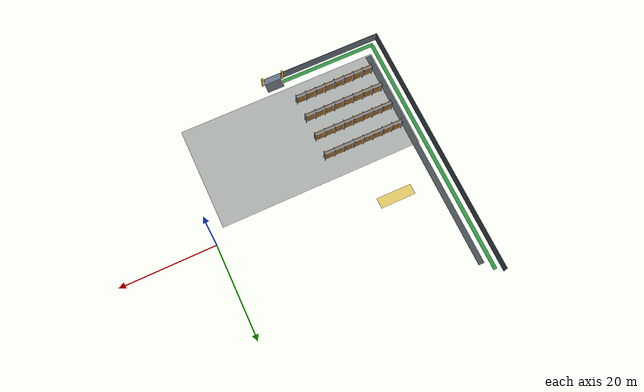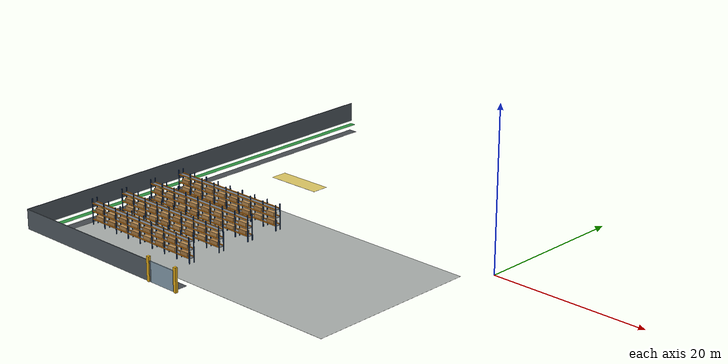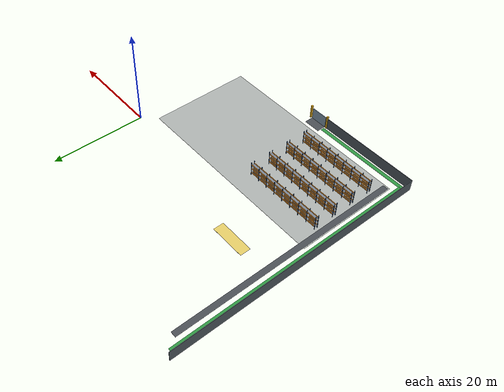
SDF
<sdf version="1.7">
 <world name="warehouse_layout_demo">
  <include><uri>model://sun</uri></include>
  <model name="sw_working_floor">
   <static>true</static>
   <pose>-24.0 -13.8 0.012 0 0 0</pose>
   <link name="marking">
    <visual name="visual">
     <geometry><box><size>43.0 22.0 0.012</size></box></geometry>
     <material><ambient>0.66 0.68 0.67 1</ambient><diffuse>0.66 0.68 0.67 1</diffuse></material>
    </visual>
   </link>
  </model>
  <model name="west_perimeter_path">
   <static>true</static>
   <pose>-44.7 0.0 0.025 0 0 0</pose>
   <link name="marking">
    <visual name="visual">
     <geometry><box><size>1.2 49.0 0.012</size></box></geometry>
     <material><ambient>0.28 0.30 0.32 1</ambient><diffuse>0.28 0.30 0.32 1</diffuse></material>
    </visual>
   </link>
  </model>
  <model name="south_gate_approach">
   <static>true</static>
   <pose>-24.0 -26.525 0.025 0 0 0</pose>
   <link name="marking">
    <visual name="visual">
     <geometry><box><size>3.6 1.95 0.012</size></box></geometry>
     <material><ambient>0.28 0.30 0.32 1</ambient><diffuse>0.28 0.30 0.32 1</diffuse></material>
    </visual>
   </link>
  </model>
  <model name="pedestrian_west">
   <static>true</static>
   <pose>-46.6 0.0 0.055 0 0 0</pose>
   <link name="marking">
    <visual name="visual">
     <geometry><box><size>0.8 53.0 0.012</size></box></geometry>
     <material><ambient>0.18 0.57 0.25 1</ambient><diffuse>0.18 0.57 0.25 1</diffuse></material>
    </visual>
   </link>
  </model>
  <model name="pedestrian_south_west">
   <static>true</static>
   <pose>-36.45 -26.65 0.055 0 0 0</pose>
   <link name="marking">
    <visual name="visual">
     <geometry><box><size>20.9 0.8 0.012</size></box></geometry>
     <material><ambient>0.18 0.57 0.25 1</ambient><diffuse>0.18 0.57 0.25 1</diffuse></material>
    </visual>
   </link>
  </model>
  <model name="south_fence_west">
   <static>true</static>
   <pose>-36.85 -27.5 1.25 0 0 0</pose>
   <link name="link">
    <collision name="collision">
     <geometry><box><size>22.1 0.09 2.5</size></box></geometry>
     <surface><friction><ode><mu>0.9</mu><mu2>0.9</mu2></ode></friction></surface>
    </collision>
    <visual name="visual">
     <geometry><box><size>22.1 0.09 2.5</size></box></geometry>
     <material><ambient>0.33 0.37 0.40 1</ambient><diffuse>0.33 0.37 0.40 1</diffuse></material>
    </visual>
   </link>
  </model>
  <model name="west_fence">
   <static>true</static>
   <pose>-47.9 0.0 1.25 0 0 0</pose>
   <link name="link">
    <collision name="collision">
     <geometry><box><size>0.09 55.0 2.5</size></box></geometry>
     <surface><friction><ode><mu>0.9</mu><mu2>0.9</mu2></ode></friction></surface>
    </collision>
    <visual name="visual">
     <geometry><box><size>0.09 55.0 2.5</size></box></geometry>
     <material><ambient>0.33 0.37 0.40 1</ambient><diffuse>0.33 0.37 0.40 1</diffuse></material>
    </visual>
   </link>
  </model>
  <model name="south_gate_west_post">
   <static>true</static>
   <pose>-26.2 -27.5 1.5 0 0 0</pose>
   <link name="link">
    <collision name="collision">
     <geometry><box><size>0.35 0.35 3.0</size></box></geometry>
     <surface><friction><ode><mu>0.9</mu><mu2>0.9</mu2></ode></friction></surface>
    </collision>
    <visual name="visual">
     <geometry><box><size>0.35 0.35 3.0</size></box></geometry>
     <material><ambient>0.95 0.72 0.10 1</ambient><diffuse>0.95 0.72 0.10 1</diffuse></material>
    </visual>
   </link>
  </model>
  <model name="south_gate_east_post">
   <static>true</static>
   <pose>-21.8 -27.5 1.5 0 0 0</pose>
   <link name="link">
    <collision name="collision">
     <geometry><box><size>0.35 0.35 3.0</size></box></geometry>
     <surface><friction><ode><mu>0.9</mu><mu2>0.9</mu2></ode></friction></surface>
    </collision>
    <visual name="visual">
     <geometry><box><size>0.35 0.35 3.0</size></box></geometry>
     <material><ambient>0.95 0.72 0.10 1</ambient><diffuse>0.95 0.72 0.10 1</diffuse></material>
    </visual>
   </link>
  </model>
  <model name="warehouse_south_gate">
   <static>false</static>
   <pose>-24.0 -27.5 1.25 0 0 0</pose>
   <link name="panel">
    <kinematic>true</kinematic>
    <gravity>false</gravity>
    <inertial>
     <mass>100.0</mass>
     <inertia><ixx>100.0</ixx><iyy>100.0</iyy><izz>100.0</izz><ixy>0</ixy><ixz>0</ixz><iyz>0</iyz></inertia>
    </inertial>
    <collision name="collision"><geometry><box><size>3.6 0.105 2.5</size></box></geometry></collision>
    <visual name="visual">
     <geometry><box><size>3.6 0.105 2.5</size></box></geometry>
     <material><ambient>0.55 0.65 0.72 1</ambient><diffuse>0.55 0.65 0.72 1</diffuse></material>
    </visual>
   </link>
  </model>
  <model name="storage_rack_west_1_sw">
   <static>true</static>
   <pose>-35.0 -7.5 0 0 0 0</pose>
   <link name="rack">
    <collision name="rack_footprint">
     <pose>0 0 1.65 0 0 0</pose>
     <geometry><box><size>17.0 0.7 3.3</size></box></geometry>
    </collision>
    <visual name="upright_0_0">
     <pose>-8.5 -0.35 1.65 0 0 0</pose>
     <geometry><box><size>0.10 0.10 3.3</size></box></geometry>
     <material><ambient>0.12 0.24 0.42 1</ambient><diffuse>0.12 0.24 0.42 1</diffuse></material>
    </visual>
    <visual name="upright_0_1">
     <pose>-8.5 0.35 1.65 0 0 0</pose>
     <geometry><box><size>0.10 0.10 3.3</size></box></geometry>
     <material><ambient>0.12 0.24 0.42 1</ambient><diffuse>0.12 0.24 0.42 1</diffuse></material>
    </visual>
    <visual name="upright_1_0">
     <pose>-6.375 -0.35 1.65 0 0 0</pose>
     <geometry><box><size>0.10 0.10 3.3</size></box></geometry>
     <material><ambient>0.12 0.24 0.42 1</ambient><diffuse>0.12 0.24 0.42 1</diffuse></material>
    </visual>
    <visual name="upright_1_1">
     <pose>-6.375 0.35 1.65 0 0 0</pose>
     <geometry><box><size>0.10 0.10 3.3</size></box></geometry>
     <material><ambient>0.12 0.24 0.42 1</ambient><diffuse>0.12 0.24 0.42 1</diffuse></material>
    </visual>
    <visual name="upright_2_0">
     <pose>-4.25 -0.35 1.65 0 0 0</pose>
     <geometry><box><size>0.10 0.10 3.3</size></box></geometry>
     <material><ambient>0.12 0.24 0.42 1</ambient><diffuse>0.12 0.24 0.42 1</diffuse></material>
    </visual>
    <visual name="upright_2_1">
     <pose>-4.25 0.35 1.65 0 0 0</pose>
     <geometry><box><size>0.10 0.10 3.3</size></box></geometry>
     <material><ambient>0.12 0.24 0.42 1</ambient><diffuse>0.12 0.24 0.42 1</diffuse></material>
    </visual>
    <visual name="upright_3_0">
     <pose>-2.125 -0.35 1.65 0 0 0</pose>
     <geometry><box><size>0.10 0.10 3.3</size></box></geometry>
     <material><ambient>0.12 0.24 0.42 1</ambient><diffuse>0.12 0.24 0.42 1</diffuse></material>
    </visual>
    <visual name="upright_3_1">
     <pose>-2.125 0.35 1.65 0 0 0</pose>
     <geometry><box><size>0.10 0.10 3.3</size></box></geometry>
     <material><ambient>0.12 0.24 0.42 1</ambient><diffuse>0.12 0.24 0.42 1</diffuse></material>
    </visual>
    <visual name="upright_4_0">
     <pose>0.0 -0.35 1.65 0 0 0</pose>
     <geometry><box><size>0.10 0.10 3.3</size></box></geometry>
     <material><ambient>0.12 0.24 0.42 1</ambient><diffuse>0.12 0.24 0.42 1</diffuse></material>
    </visual>
    <visual name="upright_4_1">
     <pose>0.0 0.35 1.65 0 0 0</pose>
     <geometry><box><size>0.10 0.10 3.3</size></box></geometry>
     <material><ambient>0.12 0.24 0.42 1</ambient><diffuse>0.12 0.24 0.42 1</diffuse></material>
    </visual>
    <visual name="upright_5_0">
     <pose>2.125 -0.35 1.65 0 0 0</pose>
     <geometry><box><size>0.10 0.10 3.3</size></box></geometry>
     <material><ambient>0.12 0.24 0.42 1</ambient><diffuse>0.12 0.24 0.42 1</diffuse></material>
    </visual>
    <visual name="upright_5_1">
     <pose>2.125 0.35 1.65 0 0 0</pose>
     <geometry><box><size>0.10 0.10 3.3</size></box></geometry>
     <material><ambient>0.12 0.24 0.42 1</ambient><diffuse>0.12 0.24 0.42 1</diffuse></material>
    </visual>
    <visual name="upright_6_0">
     <pose>4.25 -0.35 1.65 0 0 0</pose>
     <geometry><box><size>0.10 0.10 3.3</size></box></geometry>
     <material><ambient>0.12 0.24 0.42 1</ambient><diffuse>0.12 0.24 0.42 1</diffuse></material>
    </visual>
    <visual name="upright_6_1">
     <pose>4.25 0.35 1.65 0 0 0</pose>
     <geometry><box><size>0.10 0.10 3.3</size></box></geometry>
     <material><ambient>0.12 0.24 0.42 1</ambient><diffuse>0.12 0.24 0.42 1</diffuse></material>
    </visual>
    <visual name="upright_7_0">
     <pose>6.375 -0.35 1.65 0 0 0</pose>
     <geometry><box><size>0.10 0.10 3.3</size></box></geometry>
     <material><ambient>0.12 0.24 0.42 1</ambient><diffuse>0.12 0.24 0.42 1</diffuse></material>
    </visual>
    <visual name="upright_7_1">
     <pose>6.375 0.35 1.65 0 0 0</pose>
     <geometry><box><size>0.10 0.10 3.3</size></box></geometry>
     <material><ambient>0.12 0.24 0.42 1</ambient><diffuse>0.12 0.24 0.42 1</diffuse></material>
    </visual>
    <visual name="upright_8_0">
     <pose>8.5 -0.35 1.65 0 0 0</pose>
     <geometry><box><size>0.10 0.10 3.3</size></box></geometry>
     <material><ambient>0.12 0.24 0.42 1</ambient><diffuse>0.12 0.24 0.42 1</diffuse></material>
    </visual>
    <visual name="upright_8_1">
     <pose>8.5 0.35 1.65 0 0 0</pose>
     <geometry><box><size>0.10 0.10 3.3</size></box></geometry>
     <material><ambient>0.12 0.24 0.42 1</ambient><diffuse>0.12 0.24 0.42 1</diffuse></material>
    </visual>
    <visual name="deck_0">
     <pose>0 0 0.65 0 0 0</pose>
     <geometry><box><size>17.0 0.7 0.06</size></box></geometry>
     <material><ambient>0.48 0.51 0.55 1</ambient><diffuse>0.48 0.51 0.55 1</diffuse></material>
    </visual>
    <visual name="beam_0_0">
     <pose>0 -0.35 0.71 0 0 0</pose>
     <geometry><box><size>17.0 0.10 0.12</size></box></geometry>
     <material><ambient>0.95 0.55 0.08 1</ambient><diffuse>0.95 0.55 0.08 1</diffuse></material>
    </visual>
    <visual name="beam_0_1">
     <pose>0 0.35 0.71 0 0 0</pose>
     <geometry><box><size>17.0 0.10 0.12</size></box></geometry>
     <material><ambient>0.95 0.55 0.08 1</ambient><diffuse>0.95 0.55 0.08 1</diffuse></material>
    </visual>
    <visual name="deck_1">
     <pose>0 0 1.65 0 0 0</pose>
     <geometry><box><size>17.0 0.7 0.06</size></box></geometry>
     <material><ambient>0.48 0.51 0.55 1</ambient><diffuse>0.48 0.51 0.55 1</diffuse></material>
    </visual>
    <visual name="beam_1_0">
     <pose>0 -0.35 1.71 0 0 0</pose>
     <geometry><box><size>17.0 0.10 0.12</size></box></geometry>
     <material><ambient>0.95 0.55 0.08 1</ambient><diffuse>0.95 0.55 0.08 1</diffuse></material>
    </visual>
    <visual name="beam_1_1">
     <pose>0 0.35 1.71 0 0 0</pose>
     <geometry><box><size>17.0 0.10 0.12</size></box></geometry>
     <material><ambient>0.95 0.55 0.08 1</ambient><diffuse>0.95 0.55 0.08 1</diffuse></material>
    </visual>
    <visual name="deck_2">
     <pose>0 0 2.65 0 0 0</pose>
     <geometry><box><size>17.0 0.7 0.06</size></box></geometry>
     <material><ambient>0.48 0.51 0.55 1</ambient><diffuse>0.48 0.51 0.55 1</diffuse></material>
    </visual>
    <visual name="beam_2_0">
     <pose>0 -0.35 2.71 0 0 0</pose>
     <geometry><box><size>17.0 0.10 0.12</size></box></geometry>
     <material><ambient>0.95 0.55 0.08 1</ambient><diffuse>0.95 0.55 0.08 1</diffuse></material>
    </visual>
    <visual name="beam_2_1">
     <pose>0 0.35 2.71 0 0 0</pose>
     <geometry><box><size>17.0 0.10 0.12</size></box></geometry>
     <material><ambient>0.95 0.55 0.08 1</ambient><diffuse>0.95 0.55 0.08 1</diffuse></material>
    </visual>
    <visual name="load_0_0">
     <pose>-7.4375 0 0.95 0 0 0</pose>
     <geometry><box><size>1.25 0.504 0.48</size></box></geometry>
     <material><ambient>0.72 0.54 0.31 1</ambient><diffuse>0.72 0.54 0.31 1</diffuse></material>
    </visual>
    <visual name="load_0_1">
     <pose>-7.4375 0 1.95 0 0 0</pose>
     <geometry><box><size>1.25 0.504 0.48</size></box></geometry>
     <material><ambient>0.67 0.48 0.25 1</ambient><diffuse>0.67 0.48 0.25 1</diffuse></material>
    </visual>
    <visual name="load_1_0">
     <pose>-5.3125 0 0.95 0 0 0</pose>
     <geometry><box><size>1.25 0.504 0.48</size></box></geometry>
     <material><ambient>0.67 0.48 0.25 1</ambient><diffuse>0.67 0.48 0.25 1</diffuse></material>
    </visual>
    <visual name="load_1_1">
     <pose>-5.3125 0 1.95 0 0 0</pose>
     <geometry><box><size>1.25 0.504 0.48</size></box></geometry>
     <material><ambient>0.72 0.54 0.31 1</ambient><diffuse>0.72 0.54 0.31 1</diffuse></material>
    </visual>
    <visual name="load_2_0">
     <pose>-3.1875 0 0.95 0 0 0</pose>
     <geometry><box><size>1.25 0.504 0.48</size></box></geometry>
     <material><ambient>0.72 0.54 0.31 1</ambient><diffuse>0.72 0.54 0.31 1</diffuse></material>
    </visual>
    <visual name="load_2_1">
     <pose>-3.1875 0 1.95 0 0 0</pose>
     <geometry><box><size>1.25 0.504 0.48</size></box></geometry>
     <material><ambient>0.67 0.48 0.25 1</ambient><diffuse>0.67 0.48 0.25 1</diffuse></material>
    </visual>
    <visual name="load_3_0">
     <pose>-1.0625 0 0.95 0 0 0</pose>
     <geometry><box><size>1.25 0.504 0.48</size></box></geometry>
     <material><ambient>0.67 0.48 0.25 1</ambient><diffuse>0.67 0.48 0.25 1</diffuse></material>
    </visual>
    <visual name="load_3_1">
     <pose>-1.0625 0 1.95 0 0 0</pose>
     <geometry><box><size>1.25 0.504 0.48</size></box></geometry>
     <material><ambient>0.72 0.54 0.31 1</ambient><diffuse>0.72 0.54 0.31 1</diffuse></material>
    </visual>
    <visual name="load_4_0">
     <pose>1.0625 0 0.95 0 0 0</pose>
     <geometry><box><size>1.25 0.504 0.48</size></box></geometry>
     <material><ambient>0.72 0.54 0.31 1</ambient><diffuse>0.72 0.54 0.31 1</diffuse></material>
    </visual>
    <visual name="load_4_1">
     <pose>1.0625 0 1.95 0 0 0</pose>
     <geometry><box><size>1.25 0.504 0.48</size></box></geometry>
     <material><ambient>0.67 0.48 0.25 1</ambient><diffuse>0.67 0.48 0.25 1</diffuse></material>
    </visual>
    <visual name="load_5_0">
     <pose>3.1875 0 0.95 0 0 0</pose>
     <geometry><box><size>1.25 0.504 0.48</size></box></geometry>
     <material><ambient>0.67 0.48 0.25 1</ambient><diffuse>0.67 0.48 0.25 1</diffuse></material>
    </visual>
    <visual name="load_5_1">
     <pose>3.1875 0 1.95 0 0 0</pose>
     <geometry><box><size>1.25 0.504 0.48</size></box></geometry>
     <material><ambient>0.72 0.54 0.31 1</ambient><diffuse>0.72 0.54 0.31 1</diffuse></material>
    </visual>
    <visual name="load_6_0">
     <pose>5.3125 0 0.95 0 0 0</pose>
     <geometry><box><size>1.25 0.504 0.48</size></box></geometry>
     <material><ambient>0.72 0.54 0.31 1</ambient><diffuse>0.72 0.54 0.31 1</diffuse></material>
    </visual>
    <visual name="load_6_1">
     <pose>5.3125 0 1.95 0 0 0</pose>
     <geometry><box><size>1.25 0.504 0.48</size></box></geometry>
     <material><ambient>0.67 0.48 0.25 1</ambient><diffuse>0.67 0.48 0.25 1</diffuse></material>
    </visual>
    <visual name="load_7_0">
     <pose>7.4375 0 0.95 0 0 0</pose>
     <geometry><box><size>1.25 0.504 0.48</size></box></geometry>
     <material><ambient>0.67 0.48 0.25 1</ambient><diffuse>0.67 0.48 0.25 1</diffuse></material>
    </visual>
    <visual name="load_7_1">
     <pose>7.4375 0 1.95 0 0 0</pose>
     <geometry><box><size>1.25 0.504 0.48</size></box></geometry>
     <material><ambient>0.72 0.54 0.31 1</ambient><diffuse>0.72 0.54 0.31 1</diffuse></material>
    </visual>
   </link>
  </model>
  <model name="storage_rack_west_2_sw">
   <static>true</static>
   <pose>-35.0 -12.0 0 0 0 0</pose>
   <link name="rack">
    <collision name="rack_footprint">
     <pose>0 0 1.65 0 0 0</pose>
     <geometry><box><size>17.0 0.7 3.3</size></box></geometry>
    </collision>
    <visual name="upright_0_0">
     <pose>-8.5 -0.35 1.65 0 0 0</pose>
     <geometry><box><size>0.10 0.10 3.3</size></box></geometry>
     <material><ambient>0.12 0.24 0.42 1</ambient><diffuse>0.12 0.24 0.42 1</diffuse></material>
    </visual>
    <visual name="upright_0_1">
     <pose>-8.5 0.35 1.65 0 0 0</pose>
     <geometry><box><size>0.10 0.10 3.3</size></box></geometry>
     <material><ambient>0.12 0.24 0.42 1</ambient><diffuse>0.12 0.24 0.42 1</diffuse></material>
    </visual>
    <visual name="upright_1_0">
     <pose>-6.375 -0.35 1.65 0 0 0</pose>
     <geometry><box><size>0.10 0.10 3.3</size></box></geometry>
     <material><ambient>0.12 0.24 0.42 1</ambient><diffuse>0.12 0.24 0.42 1</diffuse></material>
    </visual>
    <visual name="upright_1_1">
     <pose>-6.375 0.35 1.65 0 0 0</pose>
     <geometry><box><size>0.10 0.10 3.3</size></box></geometry>
     <material><ambient>0.12 0.24 0.42 1</ambient><diffuse>0.12 0.24 0.42 1</diffuse></material>
    </visual>
    <visual name="upright_2_0">
     <pose>-4.25 -0.35 1.65 0 0 0</pose>
     <geometry><box><size>0.10 0.10 3.3</size></box></geometry>
     <material><ambient>0.12 0.24 0.42 1</ambient><diffuse>0.12 0.24 0.42 1</diffuse></material>
    </visual>
    <visual name="upright_2_1">
     <pose>-4.25 0.35 1.65 0 0 0</pose>
     <geometry><box><size>0.10 0.10 3.3</size></box></geometry>
     <material><ambient>0.12 0.24 0.42 1</ambient><diffuse>0.12 0.24 0.42 1</diffuse></material>
    </visual>
    <visual name="upright_3_0">
     <pose>-2.125 -0.35 1.65 0 0 0</pose>
     <geometry><box><size>0.10 0.10 3.3</size></box></geometry>
     <material><ambient>0.12 0.24 0.42 1</ambient><diffuse>0.12 0.24 0.42 1</diffuse></material>
    </visual>
    <visual name="upright_3_1">
     <pose>-2.125 0.35 1.65 0 0 0</pose>
     <geometry><box><size>0.10 0.10 3.3</size></box></geometry>
     <material><ambient>0.12 0.24 0.42 1</ambient><diffuse>0.12 0.24 0.42 1</diffuse></material>
    </visual>
    <visual name="upright_4_0">
     <pose>0.0 -0.35 1.65 0 0 0</pose>
     <geometry><box><size>0.10 0.10 3.3</size></box></geometry>
     <material><ambient>0.12 0.24 0.42 1</ambient><diffuse>0.12 0.24 0.42 1</diffuse></material>
    </visual>
    <visual name="upright_4_1">
     <pose>0.0 0.35 1.65 0 0 0</pose>
     <geometry><box><size>0.10 0.10 3.3</size></box></geometry>
     <material><ambient>0.12 0.24 0.42 1</ambient><diffuse>0.12 0.24 0.42 1</diffuse></material>
    </visual>
    <visual name="upright_5_0">
     <pose>2.125 -0.35 1.65 0 0 0</pose>
     <geometry><box><size>0.10 0.10 3.3</size></box></geometry>
     <material><ambient>0.12 0.24 0.42 1</ambient><diffuse>0.12 0.24 0.42 1</diffuse></material>
    </visual>
    <visual name="upright_5_1">
     <pose>2.125 0.35 1.65 0 0 0</pose>
     <geometry><box><size>0.10 0.10 3.3</size></box></geometry>
     <material><ambient>0.12 0.24 0.42 1</ambient><diffuse>0.12 0.24 0.42 1</diffuse></material>
    </visual>
    <visual name="upright_6_0">
     <pose>4.25 -0.35 1.65 0 0 0</pose>
     <geometry><box><size>0.10 0.10 3.3</size></box></geometry>
     <material><ambient>0.12 0.24 0.42 1</ambient><diffuse>0.12 0.24 0.42 1</diffuse></material>
    </visual>
    <visual name="upright_6_1">
     <pose>4.25 0.35 1.65 0 0 0</pose>
     <geometry><box><size>0.10 0.10 3.3</size></box></geometry>
     <material><ambient>0.12 0.24 0.42 1</ambient><diffuse>0.12 0.24 0.42 1</diffuse></material>
    </visual>
    <visual name="upright_7_0">
     <pose>6.375 -0.35 1.65 0 0 0</pose>
     <geometry><box><size>0.10 0.10 3.3</size></box></geometry>
     <material><ambient>0.12 0.24 0.42 1</ambient><diffuse>0.12 0.24 0.42 1</diffuse></material>
    </visual>
    <visual name="upright_7_1">
     <pose>6.375 0.35 1.65 0 0 0</pose>
     <geometry><box><size>0.10 0.10 3.3</size></box></geometry>
     <material><ambient>0.12 0.24 0.42 1</ambient><diffuse>0.12 0.24 0.42 1</diffuse></material>
    </visual>
    <visual name="upright_8_0">
     <pose>8.5 -0.35 1.65 0 0 0</pose>
     <geometry><box><size>0.10 0.10 3.3</size></box></geometry>
     <material><ambient>0.12 0.24 0.42 1</ambient><diffuse>0.12 0.24 0.42 1</diffuse></material>
    </visual>
    <visual name="upright_8_1">
     <pose>8.5 0.35 1.65 0 0 0</pose>
     <geometry><box><size>0.10 0.10 3.3</size></box></geometry>
     <material><ambient>0.12 0.24 0.42 1</ambient><diffuse>0.12 0.24 0.42 1</diffuse></material>
    </visual>
    <visual name="deck_0">
     <pose>0 0 0.65 0 0 0</pose>
     <geometry><box><size>17.0 0.7 0.06</size></box></geometry>
     <material><ambient>0.48 0.51 0.55 1</ambient><diffuse>0.48 0.51 0.55 1</diffuse></material>
    </visual>
    <visual name="beam_0_0">
     <pose>0 -0.35 0.71 0 0 0</pose>
     <geometry><box><size>17.0 0.10 0.12</size></box></geometry>
     <material><ambient>0.95 0.55 0.08 1</ambient><diffuse>0.95 0.55 0.08 1</diffuse></material>
    </visual>
    <visual name="beam_0_1">
     <pose>0 0.35 0.71 0 0 0</pose>
     <geometry><box><size>17.0 0.10 0.12</size></box></geometry>
     <material><ambient>0.95 0.55 0.08 1</ambient><diffuse>0.95 0.55 0.08 1</diffuse></material>
    </visual>
    <visual name="deck_1">
     <pose>0 0 1.65 0 0 0</pose>
     <geometry><box><size>17.0 0.7 0.06</size></box></geometry>
     <material><ambient>0.48 0.51 0.55 1</ambient><diffuse>0.48 0.51 0.55 1</diffuse></material>
    </visual>
    <visual name="beam_1_0">
     <pose>0 -0.35 1.71 0 0 0</pose>
     <geometry><box><size>17.0 0.10 0.12</size></box></geometry>
     <material><ambient>0.95 0.55 0.08 1</ambient><diffuse>0.95 0.55 0.08 1</diffuse></material>
    </visual>
    <visual name="beam_1_1">
     <pose>0 0.35 1.71 0 0 0</pose>
     <geometry><box><size>17.0 0.10 0.12</size></box></geometry>
     <material><ambient>0.95 0.55 0.08 1</ambient><diffuse>0.95 0.55 0.08 1</diffuse></material>
    </visual>
    <visual name="deck_2">
     <pose>0 0 2.65 0 0 0</pose>
     <geometry><box><size>17.0 0.7 0.06</size></box></geometry>
     <material><ambient>0.48 0.51 0.55 1</ambient><diffuse>0.48 0.51 0.55 1</diffuse></material>
    </visual>
    <visual name="beam_2_0">
     <pose>0 -0.35 2.71 0 0 0</pose>
     <geometry><box><size>17.0 0.10 0.12</size></box></geometry>
     <material><ambient>0.95 0.55 0.08 1</ambient><diffuse>0.95 0.55 0.08 1</diffuse></material>
    </visual>
    <visual name="beam_2_1">
     <pose>0 0.35 2.71 0 0 0</pose>
     <geometry><box><size>17.0 0.10 0.12</size></box></geometry>
     <material><ambient>0.95 0.55 0.08 1</ambient><diffuse>0.95 0.55 0.08 1</diffuse></material>
    </visual>
    <visual name="load_0_0">
     <pose>-7.4375 0 0.95 0 0 0</pose>
     <geometry><box><size>1.25 0.504 0.48</size></box></geometry>
     <material><ambient>0.72 0.54 0.31 1</ambient><diffuse>0.72 0.54 0.31 1</diffuse></material>
    </visual>
    <visual name="load_0_1">
     <pose>-7.4375 0 1.95 0 0 0</pose>
     <geometry><box><size>1.25 0.504 0.48</size></box></geometry>
     <material><ambient>0.67 0.48 0.25 1</ambient><diffuse>0.67 0.48 0.25 1</diffuse></material>
    </visual>
    <visual name="load_1_0">
     <pose>-5.3125 0 0.95 0 0 0</pose>
     <geometry><box><size>1.25 0.504 0.48</size></box></geometry>
     <material><ambient>0.67 0.48 0.25 1</ambient><diffuse>0.67 0.48 0.25 1</diffuse></material>
    </visual>
    <visual name="load_1_1">
     <pose>-5.3125 0 1.95 0 0 0</pose>
     <geometry><box><size>1.25 0.504 0.48</size></box></geometry>
     <material><ambient>0.72 0.54 0.31 1</ambient><diffuse>0.72 0.54 0.31 1</diffuse></material>
    </visual>
    <visual name="load_2_0">
     <pose>-3.1875 0 0.95 0 0 0</pose>
     <geometry><box><size>1.25 0.504 0.48</size></box></geometry>
     <material><ambient>0.72 0.54 0.31 1</ambient><diffuse>0.72 0.54 0.31 1</diffuse></material>
    </visual>
    <visual name="load_2_1">
     <pose>-3.1875 0 1.95 0 0 0</pose>
     <geometry><box><size>1.25 0.504 0.48</size></box></geometry>
     <material><ambient>0.67 0.48 0.25 1</ambient><diffuse>0.67 0.48 0.25 1</diffuse></material>
    </visual>
    <visual name="load_3_0">
     <pose>-1.0625 0 0.95 0 0 0</pose>
     <geometry><box><size>1.25 0.504 0.48</size></box></geometry>
     <material><ambient>0.67 0.48 0.25 1</ambient><diffuse>0.67 0.48 0.25 1</diffuse></material>
    </visual>
    <visual name="load_3_1">
     <pose>-1.0625 0 1.95 0 0 0</pose>
     <geometry><box><size>1.25 0.504 0.48</size></box></geometry>
     <material><ambient>0.72 0.54 0.31 1</ambient><diffuse>0.72 0.54 0.31 1</diffuse></material>
    </visual>
    <visual name="load_4_0">
     <pose>1.0625 0 0.95 0 0 0</pose>
     <geometry><box><size>1.25 0.504 0.48</size></box></geometry>
     <material><ambient>0.72 0.54 0.31 1</ambient><diffuse>0.72 0.54 0.31 1</diffuse></material>
    </visual>
    <visual name="load_4_1">
     <pose>1.0625 0 1.95 0 0 0</pose>
     <geometry><box><size>1.25 0.504 0.48</size></box></geometry>
     <material><ambient>0.67 0.48 0.25 1</ambient><diffuse>0.67 0.48 0.25 1</diffuse></material>
    </visual>
    <visual name="load_5_0">
     <pose>3.1875 0 0.95 0 0 0</pose>
     <geometry><box><size>1.25 0.504 0.48</size></box></geometry>
     <material><ambient>0.67 0.48 0.25 1</ambient><diffuse>0.67 0.48 0.25 1</diffuse></material>
    </visual>
    <visual name="load_5_1">
     <pose>3.1875 0 1.95 0 0 0</pose>
     <geometry><box><size>1.25 0.504 0.48</size></box></geometry>
     <material><ambient>0.72 0.54 0.31 1</ambient><diffuse>0.72 0.54 0.31 1</diffuse></material>
    </visual>
    <visual name="load_6_0">
     <pose>5.3125 0 0.95 0 0 0</pose>
     <geometry><box><size>1.25 0.504 0.48</size></box></geometry>
     <material><ambient>0.72 0.54 0.31 1</ambient><diffuse>0.72 0.54 0.31 1</diffuse></material>
    </visual>
    <visual name="load_6_1">
     <pose>5.3125 0 1.95 0 0 0</pose>
     <geometry><box><size>1.25 0.504 0.48</size></box></geometry>
     <material><ambient>0.67 0.48 0.25 1</ambient><diffuse>0.67 0.48 0.25 1</diffuse></material>
    </visual>
    <visual name="load_7_0">
     <pose>7.4375 0 0.95 0 0 0</pose>
     <geometry><box><size>1.25 0.504 0.48</size></box></geometry>
     <material><ambient>0.67 0.48 0.25 1</ambient><diffuse>0.67 0.48 0.25 1</diffuse></material>
    </visual>
    <visual name="load_7_1">
     <pose>7.4375 0 1.95 0 0 0</pose>
     <geometry><box><size>1.25 0.504 0.48</size></box></geometry>
     <material><ambient>0.72 0.54 0.31 1</ambient><diffuse>0.72 0.54 0.31 1</diffuse></material>
    </visual>
   </link>
  </model>
  <model name="storage_rack_west_3_sw">
   <static>true</static>
   <pose>-35.0 -16.5 0 0 0 0</pose>
   <link name="rack">
    <collision name="rack_footprint">
     <pose>0 0 1.65 0 0 0</pose>
     <geometry><box><size>17.0 0.7 3.3</size></box></geometry>
    </collision>
    <visual name="upright_0_0">
     <pose>-8.5 -0.35 1.65 0 0 0</pose>
     <geometry><box><size>0.10 0.10 3.3</size></box></geometry>
     <material><ambient>0.12 0.24 0.42 1</ambient><diffuse>0.12 0.24 0.42 1</diffuse></material>
    </visual>
    <visual name="upright_0_1">
     <pose>-8.5 0.35 1.65 0 0 0</pose>
     <geometry><box><size>0.10 0.10 3.3</size></box></geometry>
     <material><ambient>0.12 0.24 0.42 1</ambient><diffuse>0.12 0.24 0.42 1</diffuse></material>
    </visual>
    <visual name="upright_1_0">
     <pose>-6.375 -0.35 1.65 0 0 0</pose>
     <geometry><box><size>0.10 0.10 3.3</size></box></geometry>
     <material><ambient>0.12 0.24 0.42 1</ambient><diffuse>0.12 0.24 0.42 1</diffuse></material>
    </visual>
    <visual name="upright_1_1">
     <pose>-6.375 0.35 1.65 0 0 0</pose>
     <geometry><box><size>0.10 0.10 3.3</size></box></geometry>
     <material><ambient>0.12 0.24 0.42 1</ambient><diffuse>0.12 0.24 0.42 1</diffuse></material>
    </visual>
    <visual name="upright_2_0">
     <pose>-4.25 -0.35 1.65 0 0 0</pose>
     <geometry><box><size>0.10 0.10 3.3</size></box></geometry>
     <material><ambient>0.12 0.24 0.42 1</ambient><diffuse>0.12 0.24 0.42 1</diffuse></material>
    </visual>
    <visual name="upright_2_1">
     <pose>-4.25 0.35 1.65 0 0 0</pose>
     <geometry><box><size>0.10 0.10 3.3</size></box></geometry>
     <material><ambient>0.12 0.24 0.42 1</ambient><diffuse>0.12 0.24 0.42 1</diffuse></material>
    </visual>
    <visual name="upright_3_0">
     <pose>-2.125 -0.35 1.65 0 0 0</pose>
     <geometry><box><size>0.10 0.10 3.3</size></box></geometry>
     <material><ambient>0.12 0.24 0.42 1</ambient><diffuse>0.12 0.24 0.42 1</diffuse></material>
    </visual>
    <visual name="upright_3_1">
     <pose>-2.125 0.35 1.65 0 0 0</pose>
     <geometry><box><size>0.10 0.10 3.3</size></box></geometry>
     <material><ambient>0.12 0.24 0.42 1</ambient><diffuse>0.12 0.24 0.42 1</diffuse></material>
    </visual>
    <visual name="upright_4_0">
     <pose>0.0 -0.35 1.65 0 0 0</pose>
     <geometry><box><size>0.10 0.10 3.3</size></box></geometry>
     <material><ambient>0.12 0.24 0.42 1</ambient><diffuse>0.12 0.24 0.42 1</diffuse></material>
    </visual>
    <visual name="upright_4_1">
     <pose>0.0 0.35 1.65 0 0 0</pose>
     <geometry><box><size>0.10 0.10 3.3</size></box></geometry>
     <material><ambient>0.12 0.24 0.42 1</ambient><diffuse>0.12 0.24 0.42 1</diffuse></material>
    </visual>
    <visual name="upright_5_0">
     <pose>2.125 -0.35 1.65 0 0 0</pose>
     <geometry><box><size>0.10 0.10 3.3</size></box></geometry>
     <material><ambient>0.12 0.24 0.42 1</ambient><diffuse>0.12 0.24 0.42 1</diffuse></material>
    </visual>
    <visual name="upright_5_1">
     <pose>2.125 0.35 1.65 0 0 0</pose>
     <geometry><box><size>0.10 0.10 3.3</size></box></geometry>
     <material><ambient>0.12 0.24 0.42 1</ambient><diffuse>0.12 0.24 0.42 1</diffuse></material>
    </visual>
    <visual name="upright_6_0">
     <pose>4.25 -0.35 1.65 0 0 0</pose>
     <geometry><box><size>0.10 0.10 3.3</size></box></geometry>
     <material><ambient>0.12 0.24 0.42 1</ambient><diffuse>0.12 0.24 0.42 1</diffuse></material>
    </visual>
    <visual name="upright_6_1">
     <pose>4.25 0.35 1.65 0 0 0</pose>
     <geometry><box><size>0.10 0.10 3.3</size></box></geometry>
     <material><ambient>0.12 0.24 0.42 1</ambient><diffuse>0.12 0.24 0.42 1</diffuse></material>
    </visual>
    <visual name="upright_7_0">
     <pose>6.375 -0.35 1.65 0 0 0</pose>
     <geometry><box><size>0.10 0.10 3.3</size></box></geometry>
     <material><ambient>0.12 0.24 0.42 1</ambient><diffuse>0.12 0.24 0.42 1</diffuse></material>
    </visual>
    <visual name="upright_7_1">
     <pose>6.375 0.35 1.65 0 0 0</pose>
     <geometry><box><size>0.10 0.10 3.3</size></box></geometry>
     <material><ambient>0.12 0.24 0.42 1</ambient><diffuse>0.12 0.24 0.42 1</diffuse></material>
    </visual>
    <visual name="upright_8_0">
     <pose>8.5 -0.35 1.65 0 0 0</pose>
     <geometry><box><size>0.10 0.10 3.3</size></box></geometry>
     <material><ambient>0.12 0.24 0.42 1</ambient><diffuse>0.12 0.24 0.42 1</diffuse></material>
    </visual>
    <visual name="upright_8_1">
     <pose>8.5 0.35 1.65 0 0 0</pose>
     <geometry><box><size>0.10 0.10 3.3</size></box></geometry>
     <material><ambient>0.12 0.24 0.42 1</ambient><diffuse>0.12 0.24 0.42 1</diffuse></material>
    </visual>
    <visual name="deck_0">
     <pose>0 0 0.65 0 0 0</pose>
     <geometry><box><size>17.0 0.7 0.06</size></box></geometry>
     <material><ambient>0.48 0.51 0.55 1</ambient><diffuse>0.48 0.51 0.55 1</diffuse></material>
    </visual>
    <visual name="beam_0_0">
     <pose>0 -0.35 0.71 0 0 0</pose>
     <geometry><box><size>17.0 0.10 0.12</size></box></geometry>
     <material><ambient>0.95 0.55 0.08 1</ambient><diffuse>0.95 0.55 0.08 1</diffuse></material>
    </visual>
    <visual name="beam_0_1">
     <pose>0 0.35 0.71 0 0 0</pose>
     <geometry><box><size>17.0 0.10 0.12</size></box></geometry>
     <material><ambient>0.95 0.55 0.08 1</ambient><diffuse>0.95 0.55 0.08 1</diffuse></material>
    </visual>
    <visual name="deck_1">
     <pose>0 0 1.65 0 0 0</pose>
     <geometry><box><size>17.0 0.7 0.06</size></box></geometry>
     <material><ambient>0.48 0.51 0.55 1</ambient><diffuse>0.48 0.51 0.55 1</diffuse></material>
    </visual>
    <visual name="beam_1_0">
     <pose>0 -0.35 1.71 0 0 0</pose>
     <geometry><box><size>17.0 0.10 0.12</size></box></geometry>
     <material><ambient>0.95 0.55 0.08 1</ambient><diffuse>0.95 0.55 0.08 1</diffuse></material>
    </visual>
    <visual name="beam_1_1">
     <pose>0 0.35 1.71 0 0 0</pose>
     <geometry><box><size>17.0 0.10 0.12</size></box></geometry>
     <material><ambient>0.95 0.55 0.08 1</ambient><diffuse>0.95 0.55 0.08 1</diffuse></material>
    </visual>
    <visual name="deck_2">
     <pose>0 0 2.65 0 0 0</pose>
     <geometry><box><size>17.0 0.7 0.06</size></box></geometry>
     <material><ambient>0.48 0.51 0.55 1</ambient><diffuse>0.48 0.51 0.55 1</diffuse></material>
    </visual>
    <visual name="beam_2_0">
     <pose>0 -0.35 2.71 0 0 0</pose>
     <geometry><box><size>17.0 0.10 0.12</size></box></geometry>
     <material><ambient>0.95 0.55 0.08 1</ambient><diffuse>0.95 0.55 0.08 1</diffuse></material>
    </visual>
    <visual name="beam_2_1">
     <pose>0 0.35 2.71 0 0 0</pose>
     <geometry><box><size>17.0 0.10 0.12</size></box></geometry>
     <material><ambient>0.95 0.55 0.08 1</ambient><diffuse>0.95 0.55 0.08 1</diffuse></material>
    </visual>
    <visual name="load_0_0">
     <pose>-7.4375 0 0.95 0 0 0</pose>
     <geometry><box><size>1.25 0.504 0.48</size></box></geometry>
     <material><ambient>0.72 0.54 0.31 1</ambient><diffuse>0.72 0.54 0.31 1</diffuse></material>
    </visual>
    <visual name="load_0_1">
     <pose>-7.4375 0 1.95 0 0 0</pose>
     <geometry><box><size>1.25 0.504 0.48</size></box></geometry>
     <material><ambient>0.67 0.48 0.25 1</ambient><diffuse>0.67 0.48 0.25 1</diffuse></material>
    </visual>
    <visual name="load_1_0">
     <pose>-5.3125 0 0.95 0 0 0</pose>
     <geometry><box><size>1.25 0.504 0.48</size></box></geometry>
     <material><ambient>0.67 0.48 0.25 1</ambient><diffuse>0.67 0.48 0.25 1</diffuse></material>
    </visual>
    <visual name="load_1_1">
     <pose>-5.3125 0 1.95 0 0 0</pose>
     <geometry><box><size>1.25 0.504 0.48</size></box></geometry>
     <material><ambient>0.72 0.54 0.31 1</ambient><diffuse>0.72 0.54 0.31 1</diffuse></material>
    </visual>
    <visual name="load_2_0">
     <pose>-3.1875 0 0.95 0 0 0</pose>
     <geometry><box><size>1.25 0.504 0.48</size></box></geometry>
     <material><ambient>0.72 0.54 0.31 1</ambient><diffuse>0.72 0.54 0.31 1</diffuse></material>
    </visual>
    <visual name="load_2_1">
     <pose>-3.1875 0 1.95 0 0 0</pose>
     <geometry><box><size>1.25 0.504 0.48</size></box></geometry>
     <material><ambient>0.67 0.48 0.25 1</ambient><diffuse>0.67 0.48 0.25 1</diffuse></material>
    </visual>
    <visual name="load_3_0">
     <pose>-1.0625 0 0.95 0 0 0</pose>
     <geometry><box><size>1.25 0.504 0.48</size></box></geometry>
     <material><ambient>0.67 0.48 0.25 1</ambient><diffuse>0.67 0.48 0.25 1</diffuse></material>
    </visual>
    <visual name="load_3_1">
     <pose>-1.0625 0 1.95 0 0 0</pose>
     <geometry><box><size>1.25 0.504 0.48</size></box></geometry>
     <material><ambient>0.72 0.54 0.31 1</ambient><diffuse>0.72 0.54 0.31 1</diffuse></material>
    </visual>
    <visual name="load_4_0">
     <pose>1.0625 0 0.95 0 0 0</pose>
     <geometry><box><size>1.25 0.504 0.48</size></box></geometry>
     <material><ambient>0.72 0.54 0.31 1</ambient><diffuse>0.72 0.54 0.31 1</diffuse></material>
    </visual>
    <visual name="load_4_1">
     <pose>1.0625 0 1.95 0 0 0</pose>
     <geometry><box><size>1.25 0.504 0.48</size></box></geometry>
     <material><ambient>0.67 0.48 0.25 1</ambient><diffuse>0.67 0.48 0.25 1</diffuse></material>
    </visual>
    <visual name="load_5_0">
     <pose>3.1875 0 0.95 0 0 0</pose>
     <geometry><box><size>1.25 0.504 0.48</size></box></geometry>
     <material><ambient>0.67 0.48 0.25 1</ambient><diffuse>0.67 0.48 0.25 1</diffuse></material>
    </visual>
    <visual name="load_5_1">
     <pose>3.1875 0 1.95 0 0 0</pose>
     <geometry><box><size>1.25 0.504 0.48</size></box></geometry>
     <material><ambient>0.72 0.54 0.31 1</ambient><diffuse>0.72 0.54 0.31 1</diffuse></material>
    </visual>
    <visual name="load_6_0">
     <pose>5.3125 0 0.95 0 0 0</pose>
     <geometry><box><size>1.25 0.504 0.48</size></box></geometry>
     <material><ambient>0.72 0.54 0.31 1</ambient><diffuse>0.72 0.54 0.31 1</diffuse></material>
    </visual>
    <visual name="load_6_1">
     <pose>5.3125 0 1.95 0 0 0</pose>
     <geometry><box><size>1.25 0.504 0.48</size></box></geometry>
     <material><ambient>0.67 0.48 0.25 1</ambient><diffuse>0.67 0.48 0.25 1</diffuse></material>
    </visual>
    <visual name="load_7_0">
     <pose>7.4375 0 0.95 0 0 0</pose>
     <geometry><box><size>1.25 0.504 0.48</size></box></geometry>
     <material><ambient>0.67 0.48 0.25 1</ambient><diffuse>0.67 0.48 0.25 1</diffuse></material>
    </visual>
    <visual name="load_7_1">
     <pose>7.4375 0 1.95 0 0 0</pose>
     <geometry><box><size>1.25 0.504 0.48</size></box></geometry>
     <material><ambient>0.72 0.54 0.31 1</ambient><diffuse>0.72 0.54 0.31 1</diffuse></material>
    </visual>
   </link>
  </model>
  <model name="storage_rack_west_4_sw">
   <static>true</static>
   <pose>-35.0 -21.0 0 0 0 0</pose>
   <link name="rack">
    <collision name="rack_footprint">
     <pose>0 0 1.65 0 0 0</pose>
     <geometry><box><size>17.0 0.7 3.3</size></box></geometry>
    </collision>
    <visual name="upright_0_0">
     <pose>-8.5 -0.35 1.65 0 0 0</pose>
     <geometry><box><size>0.10 0.10 3.3</size></box></geometry>
     <material><ambient>0.12 0.24 0.42 1</ambient><diffuse>0.12 0.24 0.42 1</diffuse></material>
    </visual>
    <visual name="upright_0_1">
     <pose>-8.5 0.35 1.65 0 0 0</pose>
     <geometry><box><size>0.10 0.10 3.3</size></box></geometry>
     <material><ambient>0.12 0.24 0.42 1</ambient><diffuse>0.12 0.24 0.42 1</diffuse></material>
    </visual>
    <visual name="upright_1_0">
     <pose>-6.375 -0.35 1.65 0 0 0</pose>
     <geometry><box><size>0.10 0.10 3.3</size></box></geometry>
     <material><ambient>0.12 0.24 0.42 1</ambient><diffuse>0.12 0.24 0.42 1</diffuse></material>
    </visual>
    <visual name="upright_1_1">
     <pose>-6.375 0.35 1.65 0 0 0</pose>
     <geometry><box><size>0.10 0.10 3.3</size></box></geometry>
     <material><ambient>0.12 0.24 0.42 1</ambient><diffuse>0.12 0.24 0.42 1</diffuse></material>
    </visual>
    <visual name="upright_2_0">
     <pose>-4.25 -0.35 1.65 0 0 0</pose>
     <geometry><box><size>0.10 0.10 3.3</size></box></geometry>
     <material><ambient>0.12 0.24 0.42 1</ambient><diffuse>0.12 0.24 0.42 1</diffuse></material>
    </visual>
    <visual name="upright_2_1">
     <pose>-4.25 0.35 1.65 0 0 0</pose>
     <geometry><box><size>0.10 0.10 3.3</size></box></geometry>
     <material><ambient>0.12 0.24 0.42 1</ambient><diffuse>0.12 0.24 0.42 1</diffuse></material>
    </visual>
    <visual name="upright_3_0">
     <pose>-2.125 -0.35 1.65 0 0 0</pose>
     <geometry><box><size>0.10 0.10 3.3</size></box></geometry>
     <material><ambient>0.12 0.24 0.42 1</ambient><diffuse>0.12 0.24 0.42 1</diffuse></material>
    </visual>
    <visual name="upright_3_1">
     <pose>-2.125 0.35 1.65 0 0 0</pose>
     <geometry><box><size>0.10 0.10 3.3</size></box></geometry>
     <material><ambient>0.12 0.24 0.42 1</ambient><diffuse>0.12 0.24 0.42 1</diffuse></material>
    </visual>
    <visual name="upright_4_0">
     <pose>0.0 -0.35 1.65 0 0 0</pose>
     <geometry><box><size>0.10 0.10 3.3</size></box></geometry>
     <material><ambient>0.12 0.24 0.42 1</ambient><diffuse>0.12 0.24 0.42 1</diffuse></material>
    </visual>
    <visual name="upright_4_1">
     <pose>0.0 0.35 1.65 0 0 0</pose>
     <geometry><box><size>0.10 0.10 3.3</size></box></geometry>
     <material><ambient>0.12 0.24 0.42 1</ambient><diffuse>0.12 0.24 0.42 1</diffuse></material>
    </visual>
    <visual name="upright_5_0">
     <pose>2.125 -0.35 1.65 0 0 0</pose>
     <geometry><box><size>0.10 0.10 3.3</size></box></geometry>
     <material><ambient>0.12 0.24 0.42 1</ambient><diffuse>0.12 0.24 0.42 1</diffuse></material>
    </visual>
    <visual name="upright_5_1">
     <pose>2.125 0.35 1.65 0 0 0</pose>
     <geometry><box><size>0.10 0.10 3.3</size></box></geometry>
     <material><ambient>0.12 0.24 0.42 1</ambient><diffuse>0.12 0.24 0.42 1</diffuse></material>
    </visual>
    <visual name="upright_6_0">
     <pose>4.25 -0.35 1.65 0 0 0</pose>
     <geometry><box><size>0.10 0.10 3.3</size></box></geometry>
     <material><ambient>0.12 0.24 0.42 1</ambient><diffuse>0.12 0.24 0.42 1</diffuse></material>
    </visual>
    <visual name="upright_6_1">
     <pose>4.25 0.35 1.65 0 0 0</pose>
     <geometry><box><size>0.10 0.10 3.3</size></box></geometry>
     <material><ambient>0.12 0.24 0.42 1</ambient><diffuse>0.12 0.24 0.42 1</diffuse></material>
    </visual>
    <visual name="upright_7_0">
     <pose>6.375 -0.35 1.65 0 0 0</pose>
     <geometry><box><size>0.10 0.10 3.3</size></box></geometry>
     <material><ambient>0.12 0.24 0.42 1</ambient><diffuse>0.12 0.24 0.42 1</diffuse></material>
    </visual>
    <visual name="upright_7_1">
     <pose>6.375 0.35 1.65 0 0 0</pose>
     <geometry><box><size>0.10 0.10 3.3</size></box></geometry>
     <material><ambient>0.12 0.24 0.42 1</ambient><diffuse>0.12 0.24 0.42 1</diffuse></material>
    </visual>
    <visual name="upright_8_0">
     <pose>8.5 -0.35 1.65 0 0 0</pose>
     <geometry><box><size>0.10 0.10 3.3</size></box></geometry>
     <material><ambient>0.12 0.24 0.42 1</ambient><diffuse>0.12 0.24 0.42 1</diffuse></material>
    </visual>
    <visual name="upright_8_1">
     <pose>8.5 0.35 1.65 0 0 0</pose>
     <geometry><box><size>0.10 0.10 3.3</size></box></geometry>
     <material><ambient>0.12 0.24 0.42 1</ambient><diffuse>0.12 0.24 0.42 1</diffuse></material>
    </visual>
    <visual name="deck_0">
     <pose>0 0 0.65 0 0 0</pose>
     <geometry><box><size>17.0 0.7 0.06</size></box></geometry>
     <material><ambient>0.48 0.51 0.55 1</ambient><diffuse>0.48 0.51 0.55 1</diffuse></material>
    </visual>
    <visual name="beam_0_0">
     <pose>0 -0.35 0.71 0 0 0</pose>
     <geometry><box><size>17.0 0.10 0.12</size></box></geometry>
     <material><ambient>0.95 0.55 0.08 1</ambient><diffuse>0.95 0.55 0.08 1</diffuse></material>
    </visual>
    <visual name="beam_0_1">
     <pose>0 0.35 0.71 0 0 0</pose>
     <geometry><box><size>17.0 0.10 0.12</size></box></geometry>
     <material><ambient>0.95 0.55 0.08 1</ambient><diffuse>0.95 0.55 0.08 1</diffuse></material>
    </visual>
    <visual name="deck_1">
     <pose>0 0 1.65 0 0 0</pose>
     <geometry><box><size>17.0 0.7 0.06</size></box></geometry>
     <material><ambient>0.48 0.51 0.55 1</ambient><diffuse>0.48 0.51 0.55 1</diffuse></material>
    </visual>
    <visual name="beam_1_0">
     <pose>0 -0.35 1.71 0 0 0</pose>
     <geometry><box><size>17.0 0.10 0.12</size></box></geometry>
     <material><ambient>0.95 0.55 0.08 1</ambient><diffuse>0.95 0.55 0.08 1</diffuse></material>
    </visual>
    <visual name="beam_1_1">
     <pose>0 0.35 1.71 0 0 0</pose>
     <geometry><box><size>17.0 0.10 0.12</size></box></geometry>
     <material><ambient>0.95 0.55 0.08 1</ambient><diffuse>0.95 0.55 0.08 1</diffuse></material>
    </visual>
    <visual name="deck_2">
     <pose>0 0 2.65 0 0 0</pose>
     <geometry><box><size>17.0 0.7 0.06</size></box></geometry>
     <material><ambient>0.48 0.51 0.55 1</ambient><diffuse>0.48 0.51 0.55 1</diffuse></material>
    </visual>
    <visual name="beam_2_0">
     <pose>0 -0.35 2.71 0 0 0</pose>
     <geometry><box><size>17.0 0.10 0.12</size></box></geometry>
     <material><ambient>0.95 0.55 0.08 1</ambient><diffuse>0.95 0.55 0.08 1</diffuse></material>
    </visual>
    <visual name="beam_2_1">
     <pose>0 0.35 2.71 0 0 0</pose>
     <geometry><box><size>17.0 0.10 0.12</size></box></geometry>
     <material><ambient>0.95 0.55 0.08 1</ambient><diffuse>0.95 0.55 0.08 1</diffuse></material>
    </visual>
    <visual name="load_0_0">
     <pose>-7.4375 0 0.95 0 0 0</pose>
     <geometry><box><size>1.25 0.504 0.48</size></box></geometry>
     <material><ambient>0.72 0.54 0.31 1</ambient><diffuse>0.72 0.54 0.31 1</diffuse></material>
    </visual>
    <visual name="load_0_1">
     <pose>-7.4375 0 1.95 0 0 0</pose>
     <geometry><box><size>1.25 0.504 0.48</size></box></geometry>
     <material><ambient>0.67 0.48 0.25 1</ambient><diffuse>0.67 0.48 0.25 1</diffuse></material>
    </visual>
    <visual name="load_1_0">
     <pose>-5.3125 0 0.95 0 0 0</pose>
     <geometry><box><size>1.25 0.504 0.48</size></box></geometry>
     <material><ambient>0.67 0.48 0.25 1</ambient><diffuse>0.67 0.48 0.25 1</diffuse></material>
    </visual>
    <visual name="load_1_1">
     <pose>-5.3125 0 1.95 0 0 0</pose>
     <geometry><box><size>1.25 0.504 0.48</size></box></geometry>
     <material><ambient>0.72 0.54 0.31 1</ambient><diffuse>0.72 0.54 0.31 1</diffuse></material>
    </visual>
    <visual name="load_2_0">
     <pose>-3.1875 0 0.95 0 0 0</pose>
     <geometry><box><size>1.25 0.504 0.48</size></box></geometry>
     <material><ambient>0.72 0.54 0.31 1</ambient><diffuse>0.72 0.54 0.31 1</diffuse></material>
    </visual>
    <visual name="load_2_1">
     <pose>-3.1875 0 1.95 0 0 0</pose>
     <geometry><box><size>1.25 0.504 0.48</size></box></geometry>
     <material><ambient>0.67 0.48 0.25 1</ambient><diffuse>0.67 0.48 0.25 1</diffuse></material>
    </visual>
    <visual name="load_3_0">
     <pose>-1.0625 0 0.95 0 0 0</pose>
     <geometry><box><size>1.25 0.504 0.48</size></box></geometry>
     <material><ambient>0.67 0.48 0.25 1</ambient><diffuse>0.67 0.48 0.25 1</diffuse></material>
    </visual>
    <visual name="load_3_1">
     <pose>-1.0625 0 1.95 0 0 0</pose>
     <geometry><box><size>1.25 0.504 0.48</size></box></geometry>
     <material><ambient>0.72 0.54 0.31 1</ambient><diffuse>0.72 0.54 0.31 1</diffuse></material>
    </visual>
    <visual name="load_4_0">
     <pose>1.0625 0 0.95 0 0 0</pose>
     <geometry><box><size>1.25 0.504 0.48</size></box></geometry>
     <material><ambient>0.72 0.54 0.31 1</ambient><diffuse>0.72 0.54 0.31 1</diffuse></material>
    </visual>
    <visual name="load_4_1">
     <pose>1.0625 0 1.95 0 0 0</pose>
     <geometry><box><size>1.25 0.504 0.48</size></box></geometry>
     <material><ambient>0.67 0.48 0.25 1</ambient><diffuse>0.67 0.48 0.25 1</diffuse></material>
    </visual>
    <visual name="load_5_0">
     <pose>3.1875 0 0.95 0 0 0</pose>
     <geometry><box><size>1.25 0.504 0.48</size></box></geometry>
     <material><ambient>0.67 0.48 0.25 1</ambient><diffuse>0.67 0.48 0.25 1</diffuse></material>
    </visual>
    <visual name="load_5_1">
     <pose>3.1875 0 1.95 0 0 0</pose>
     <geometry><box><size>1.25 0.504 0.48</size></box></geometry>
     <material><ambient>0.72 0.54 0.31 1</ambient><diffuse>0.72 0.54 0.31 1</diffuse></material>
    </visual>
    <visual name="load_6_0">
     <pose>5.3125 0 0.95 0 0 0</pose>
     <geometry><box><size>1.25 0.504 0.48</size></box></geometry>
     <material><ambient>0.72 0.54 0.31 1</ambient><diffuse>0.72 0.54 0.31 1</diffuse></material>
    </visual>
    <visual name="load_6_1">
     <pose>5.3125 0 1.95 0 0 0</pose>
     <geometry><box><size>1.25 0.504 0.48</size></box></geometry>
     <material><ambient>0.67 0.48 0.25 1</ambient><diffuse>0.67 0.48 0.25 1</diffuse></material>
    </visual>
    <visual name="load_7_0">
     <pose>7.4375 0 0.95 0 0 0</pose>
     <geometry><box><size>1.25 0.504 0.48</size></box></geometry>
     <material><ambient>0.67 0.48 0.25 1</ambient><diffuse>0.67 0.48 0.25 1</diffuse></material>
    </visual>
    <visual name="load_7_1">
     <pose>7.4375 0 1.95 0 0 0</pose>
     <geometry><box><size>1.25 0.504 0.48</size></box></geometry>
     <material><ambient>0.72 0.54 0.31 1</ambient><diffuse>0.72 0.54 0.31 1</diffuse></material>
    </visual>
   </link>
  </model>
  <model name="part_stage_1_line_1_nw_pad">
   <static>true</static>
   <pose>-36.0 5.5 0.012 0 0 0</pose>
   <link name="marking">
    <visual name="visual">
     <geometry><box><size>7.4 2.2 0.012</size></box></geometry>
     <material><ambient>0.87 0.78 0.39 1</ambient><diffuse>0.87 0.78 0.39 1</diffuse></material>
    </visual>
   </link>
  </model>
 </world>
</sdf>
